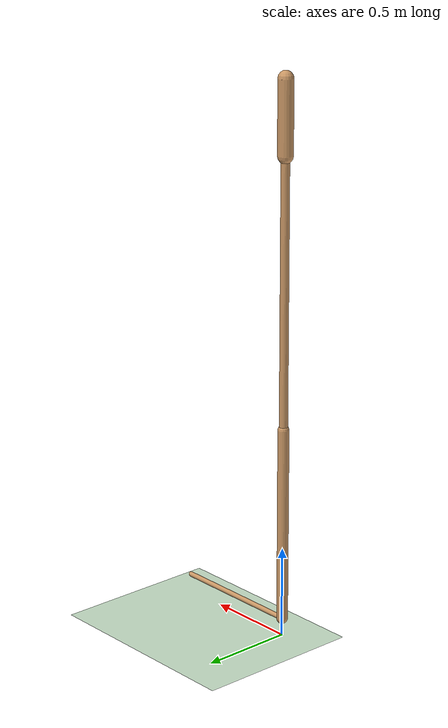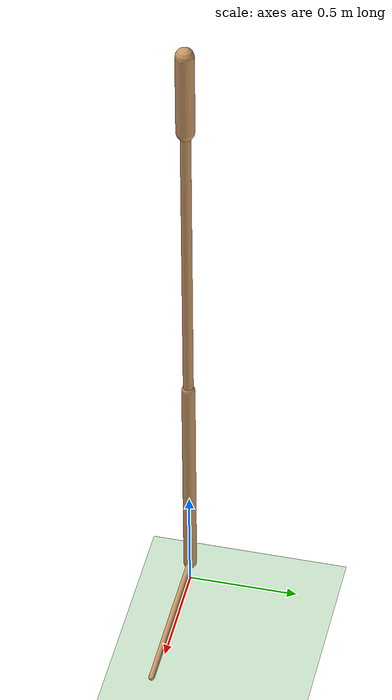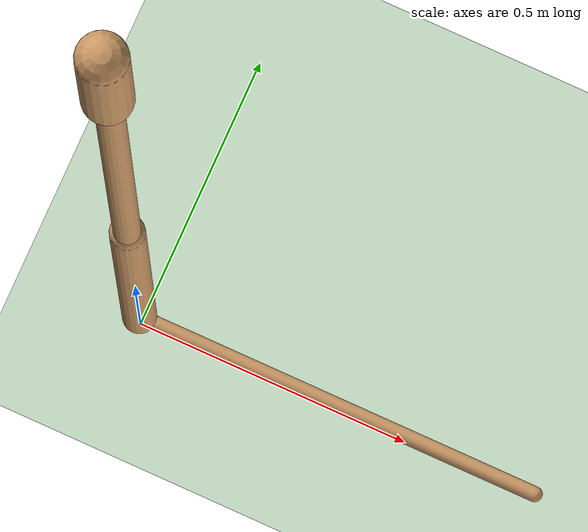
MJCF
<mujoco model="walker2d">
  <compiler angle="degree" inertiafromgeom="true" />
  <default>
    <joint armature="0.01" damping=".1" limited="true" />
    <geom conaffinity="0" condim="3" contype="1" density="1000" friction=".7 .1 .1" rgba="0.8 0.6 .4 1" />
  </default>
  <option integrator="RK4" timestep="0.002" />
  <worldbody>
    <light cutoff="100" diffuse="1 1 1" dir="-0 0 -1.3" directional="true" exponent="1" pos="0 0 1.3" specular=".1 .1 .1" />
    <geom conaffinity="1" condim="3" name="floor" pos="0 0 0" rgba="0.8 0.9 0.8 1" size="40 40 40" type="plane" material="MatPlane" />
    <body name="torso" pos="0 0 2.8105436474084855">
      <camera name="track" mode="trackcom" pos="0 -5 -1.25" xyaxes="1 0 0 0 0 1" />
      <joint armature="0" axis="1 0 0" damping="0" limited="false" name="rootx" pos="0 0 -1.25" stiffness="0" type="slide" />
      <joint armature="0" axis="0 0 1" damping="0" limited="false" name="rootz" pos="0 0 -1.25" ref="1.25" stiffness="0" type="slide" />
      <joint armature="0" axis="0 1 0" damping="0" limited="false" name="rooty" pos="0 0 0" stiffness="0" type="hinge" />
      <geom friction="0.9" name="torso_geom" size="0.04093733802437782 0.19403506815433502" type="capsule" />
      <body name="thigh" pos="0 0 -0.19403506815433502">
        <joint axis="0 -1 0" name="thigh_joint" pos="0 0 0" range="-150 0" type="hinge" />
        <site name="torso_thigh_site" pos="0 0 0" size="0.01" type="sphere" rgba="1 0 0 0.5" />
        <geom friction="0.9" pos="0 0 -0.7238784432411194" name="thigh_geom" size="0.022998925298452377 0.7238784432411194" type="capsule" />
        <body name="leg" pos="0 0 -1.9821327328681946">
          <joint axis="0 -1 0" name="leg_joint" pos="0 0 0.5343758463859558" range="-150 0" type="hinge" />
          <site name="thigh_leg_site" pos="0 0 0.25" size="0.01" type="sphere" rgba="1 0 0 0.5" />
          <geom friction="0.9" name="leg_geom" size="0.030055301263928413 0.5343758463859558" type="capsule" />
          <body name="foot" pos="0.7440892457962036 0 -0.6343758463859558">
            <joint axis="0 -1 0" name="foot_joint" pos="-0.7440892457962036 0 0.1" range="-45 45" type="hinge" />
            <site name="leg_foot_site" pos="-0.2 0 0.1" size="0.01" type="sphere" rgba="1 0 0 0.5" />
            <geom friction="0.9" pos="-0.3720446228981018 0 0.1" quat="0.70710678118654757 0 -0.70710678118654746 0" name="foot_geom" size="0.013608954846858978 0.3720446228981018" type="capsule" />
          </body>
        </body>
      </body>

      <body name="thigh_left" pos="0 0 -0.19403506815433502">
        <joint axis="0 -1 0" name="thigh_left_joint" pos="0 0 0" range="-150 0" type="hinge" />
        <site name="torso_thigh_left_site" pos="0 0 0" size="0.01" type="sphere" rgba="1 0 0 0.5" />
        <geom friction="0.9" name="thigh_left_geom" rgba=".7 .3 .6 1" size="0.022998925298452377 0.7238784432411194" pos="0 0 -0.7238784432411194" type="capsule" />
        <body name="leg_left" pos="0 0 -1.9821327328681946">
          <joint axis="0 -1 0" name="leg_left_joint" pos="0 0 0.5343758463859558" range="-150 0" type="hinge" />
          <site name="thigh_leg_left_site" pos="0 0 0.25" size="0.01" type="sphere" rgba="1 0 0 0.5" />
          <geom friction="0.9" name="leg_left_geom" rgba=".7 .3 .6 1" size="0.030055301263928413 0.5343758463859558" type="capsule" />
          <body name="foot_left" pos="0.7440892457962036 0 -0.6343758463859558">
            <joint axis="0 -1 0" name="foot_left_joint" pos="-0.7440892457962036 0 0.1" range="-45 45" type="hinge" />
            <site name="leg_foot_left_site" pos="-0.2 0 0.1" size="0.01" type="sphere" rgba="1 0 0 0.5" />
            <geom friction="1.9" name="foot_left_geom" rgba=".7 .3 .6 1" size="0.013608954846858978 0.3720446228981018" pos="-0.3720446228981018 0 0.1" type="capsule" quat="0.70710678118654757 0 -0.70710678118654746 0" />
          </body>
        </body>
      </body>
    </body>
  </worldbody>
  <actuator>

    <motor ctrllimited="true" ctrlrange="-1.0 1.0" gear="68.07038425948276" joint="thigh_joint" />
    <motor ctrllimited="true" ctrlrange="-1.0 1.0" gear="120.67824889364283" joint="leg_joint" />
    <motor ctrllimited="true" ctrlrange="-1.0 1.0" gear="19.140006354600896" joint="foot_joint" />
    <motor ctrllimited="true" ctrlrange="-1.0 1.0" gear="68.07038425948276" joint="thigh_left_joint" />
    <motor ctrllimited="true" ctrlrange="-1.0 1.0" gear="120.67824889364283" joint="leg_left_joint" />
    <motor ctrllimited="true" ctrlrange="-1.0 1.0" gear="19.140006354600896" joint="foot_left_joint" />

  </actuator>
    <asset>
        <texture type="skybox" builtin="gradient" rgb1=".4 .5 .6" rgb2="0 0 0" width="100" height="100" />
        <texture builtin="flat" height="1278" mark="cross" markrgb="1 1 1" name="texgeom" random="0.01" rgb1="0.8 0.6 0.4" rgb2="0.8 0.6 0.4" type="cube" width="127" />
        <texture builtin="checker" height="100" name="texplane" rgb1="0 0 0" rgb2="0.8 0.8 0.8" type="2d" width="100" />
        <material name="MatPlane" reflectance="0.5" shininess="1" specular="1" texrepeat="60 60" texture="texplane" />
        <material name="geom" texture="texgeom" texuniform="true" />
    </asset>

  <sensor>
    <force site="torso_thigh_site" name="torso_thigh_sensor" />
    <force site="thigh_leg_site" name="thigh_leg_sensor" />
    <force site="leg_foot_site" name="leg_foot_sensor" />
    <force site="torso_thigh_left_site" name="torso_thigh_left_sensor" />
    <force site="thigh_leg_left_site" name="thigh_leg_left_sensor" />
    <force site="leg_foot_left_site" name="leg_foot_left_sensor" />
  </sensor>
</mujoco>
